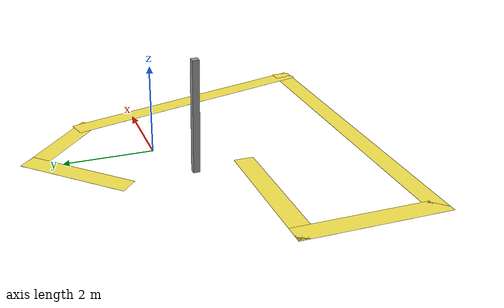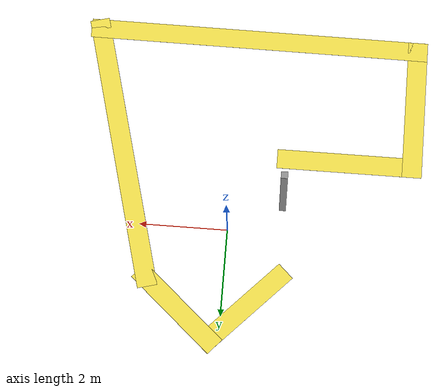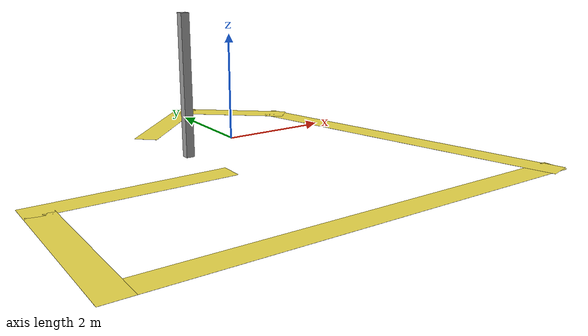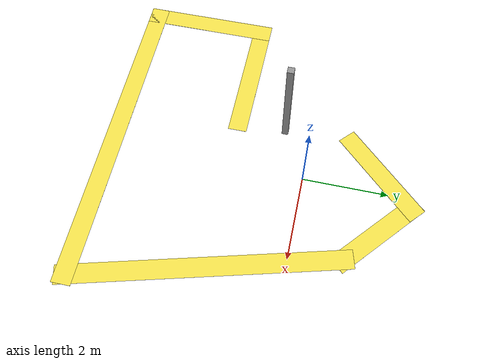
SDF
<?xml version='1.0'?>
<sdf version='1.6'>
  <model name='yellowthickshort'>
    <pose frame=''>-0.35776 -1.04121 0 0 -0 0</pose>
    <link name='Wall_18'>
      <collision name='Wall_18_Collision'>
        <geometry>
          <box>
            <size>3.3 0.45 0.001</size>
          </box>
        </geometry>
        <pose frame=''>0 0 0.0005 0 -0 0</pose>
      </collision>
      <visual name='Wall_18_Visual'>
        <pose frame=''>0 0 0.0005 0 -0 0</pose>
        <geometry>
          <box>
            <size>3.3 0.45 0.001</size>
          </box>
        </geometry>
        <material>
          <script>
            <uri>file://media/materials/scripts/gazebo.material</uri>
            <name>Gazebo/Grey</name>
          </script>
          <ambient>0.988235 0.913725 0.309804 1</ambient>
        </material>
        <meta>
          <layer>0</layer>
        </meta>
      </visual>
      <pose frame=''>-3.73924 -2.16779 0 0 -0 1.5708</pose>
    </link>
    <link name='Wall_19'>
      <collision name='Wall_19_Collision'>
        <geometry>
          <box>
            <size>3.31739 0.45 0.001</size>
          </box>
        </geometry>
        <pose frame=''>0 0 0.0005 0 -0 0</pose>
      </collision>
      <visual name='Wall_19_Visual'>
        <pose frame=''>0 0 0.0005 0 -0 0</pose>
        <geometry>
          <box>
            <size>3.31739 0.45 0.001</size>
          </box>
        </geometry>
        <material>
          <script>
            <uri>file://media/materials/scripts/gazebo.material</uri>
            <name>Gazebo/Grey</name>
          </script>
          <ambient>0.988235 0.913725 0.309804 1</ambient>
        </material>
        <meta>
          <layer>0</layer>
        </meta>
      </visual>
      <pose frame=''>-2.30554 -0.743879 0 0 -0 -0.000758</pose>
    </link>
    <link name='Wall_22'>
      <collision name='Wall_22_Collision'>
        <geometry>
          <box>
            <size>7.87875 0.45 0.001</size>
          </box>
        </geometry>
        <pose frame=''>0 0 0.0005 0 -0 0</pose>
      </collision>
      <visual name='Wall_22_Visual'>
        <pose frame=''>0 0 0.0005 0 -0 0</pose>
        <geometry>
          <box>
            <size>7.87875 0.45 0.001</size>
          </box>
        </geometry>
        <material>
          <script>
            <uri>file://media/materials/scripts/gazebo.material</uri>
            <name>Gazebo/Grey</name>
          </script>
          <ambient>0.988235 0.913725 0.309804 1</ambient>
        </material>
        <meta>
          <layer>0</layer>
        </meta>
      </visual>
      <pose frame=''>-0.02474 -3.61379 0 0 -0 -0.005653</pose>
    </link>
    <link name='Wall_23'>
      <collision name='Wall_23_Collision'>
        <geometry>
          <box>
            <size>6.54982 0.45 0.001</size>
          </box>
        </geometry>
        <pose frame=''>0 0 0.0005 0 -0 0</pose>
      </collision>
      <visual name='Wall_23_Visual'>
        <pose frame=''>0 0 0.0005 0 -0 0</pose>
        <geometry>
          <box>
            <size>6.54982 0.45 0.001</size>
          </box>
        </geometry>
        <material>
          <script>
            <uri>file://media/materials/scripts/gazebo.material</uri>
            <name>Gazebo/Grey</name>
          </script>
          <ambient>0.988235 0.913725 0.309804 1</ambient>
        </material>
        <meta>
          <layer>0</layer>
        </meta>
      </visual>
      <pose frame=''>2.90026 -0.688792 0 0 -0 1.83263</pose>
    </link>
    <link name='Wall_25'>
      <collision name='Wall_25_Collision'>
        <geometry>
          <box>
            <size>2.57527 0.45 0.001</size>
          </box>
        </geometry>
        <pose frame=''>0 0 0.0005 0 -0 0</pose>
      </collision>
      <visual name='Wall_25_Visual'>
        <pose frame=''>0 0 0.0005 0 -0 0</pose>
        <geometry>
          <box>
            <size>2.57527 0.45 0.001</size>
          </box>
        </geometry>
        <material>
          <script>
            <uri>file://media/materials/scripts/gazebo.material</uri>
            <name>Gazebo/Grey</name>
          </script>
          <ambient>0.988235 0.913725 0.309804 1</ambient>
        </material>
        <meta>
          <layer>0</layer>
        </meta>
      </visual>
      <pose frame=''>-0.138045 2.82362 0 0 -0 0.808546</pose>
    </link>
    <link name='Wall_26'>
      <collision name='Wall_26_Collision'>
        <geometry>
          <box>
            <size>2.46927 0.45 0.001</size>
          </box>
        </geometry>
        <pose frame=''>0 0 0.0005 0 -0 0</pose>
      </collision>
      <visual name='Wall_26_Visual'>
        <pose frame=''>0 0 0.0005 0 -0 0</pose>
        <geometry>
          <box>
            <size>2.46927 0.45 0.001</size>
          </box>
        </geometry>
        <material>
          <script>
            <uri>file://media/materials/scripts/gazebo.material</uri>
            <name>Gazebo/Grey</name>
          </script>
          <ambient>0.988235 0.913725 0.309804 1</ambient>
        </material>
        <meta>
          <layer>0</layer>
        </meta>
      </visual>
      <pose frame=''>1.35326 2.92471 0 0 -0 -0.722324</pose>
    </link>
    <link name='Wall_31'>
      <collision name='Wall_31_Collision'>
        <geometry>
          <box>
            <size>0.15 0.15 2.5</size>
          </box>
        </geometry>
        <pose frame=''>0 0 1.25 0 -0 0</pose>
      </collision>
      <visual name='Wall_31_Visual'>
        <pose frame=''>0 0 1.25 0 -0 0</pose>
        <geometry>
          <box>
            <size>0.15 0.15 2.5</size>
          </box>
        </geometry>
        <material>
          <script>
            <uri>file://media/materials/scripts/gazebo.material</uri>
            <name>Gazebo/Grey</name>
          </script>
          <ambient>1 1 1 1</ambient>
        </material>
        <meta>
          <layer>0</layer>
        </meta>
      </visual>
      <pose frame=''>-0.847676 0.413631 0 0 -0 0</pose>
    </link>
    <static>1</static>
  </model>
</sdf>
